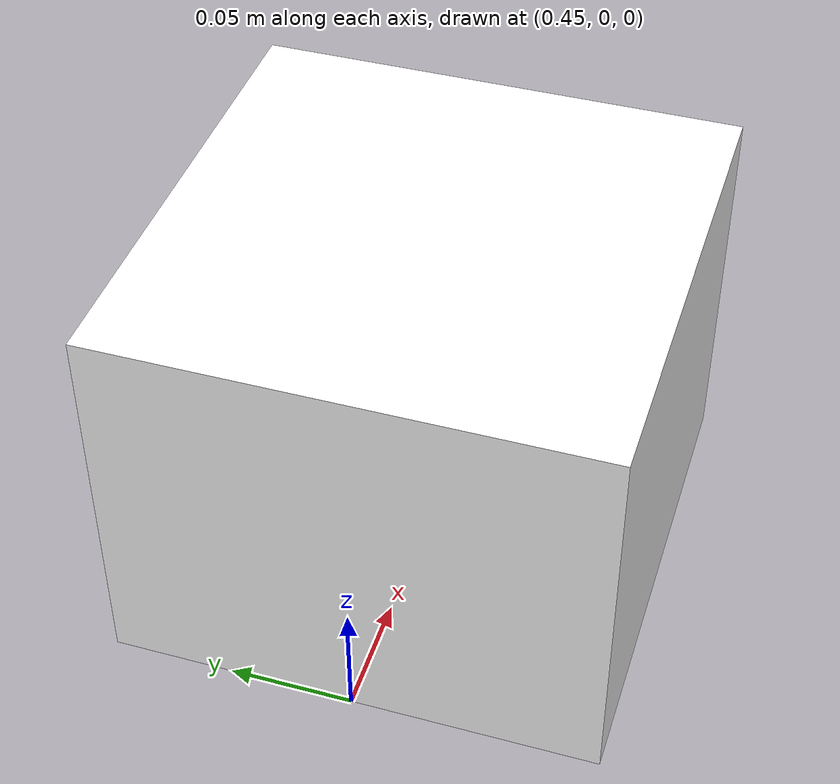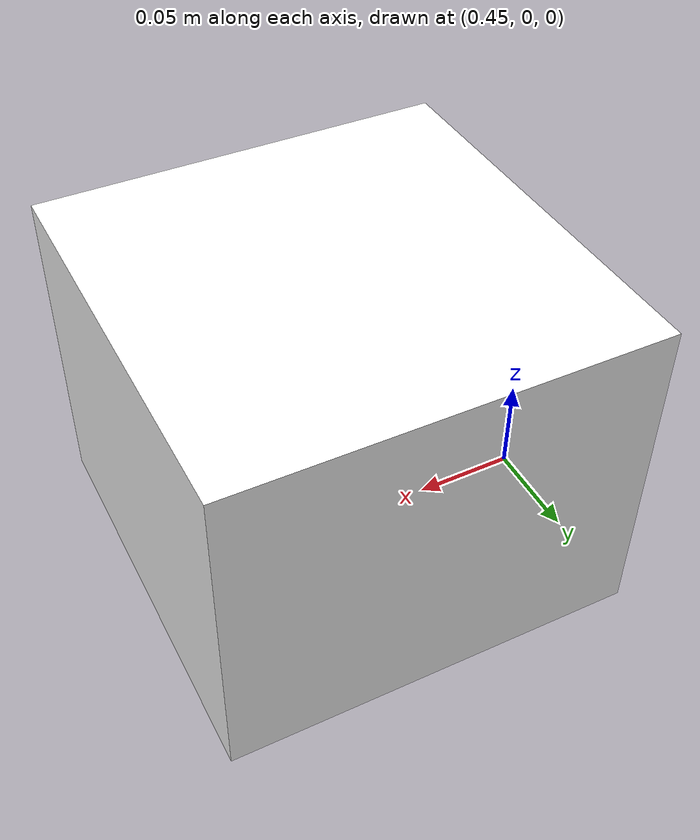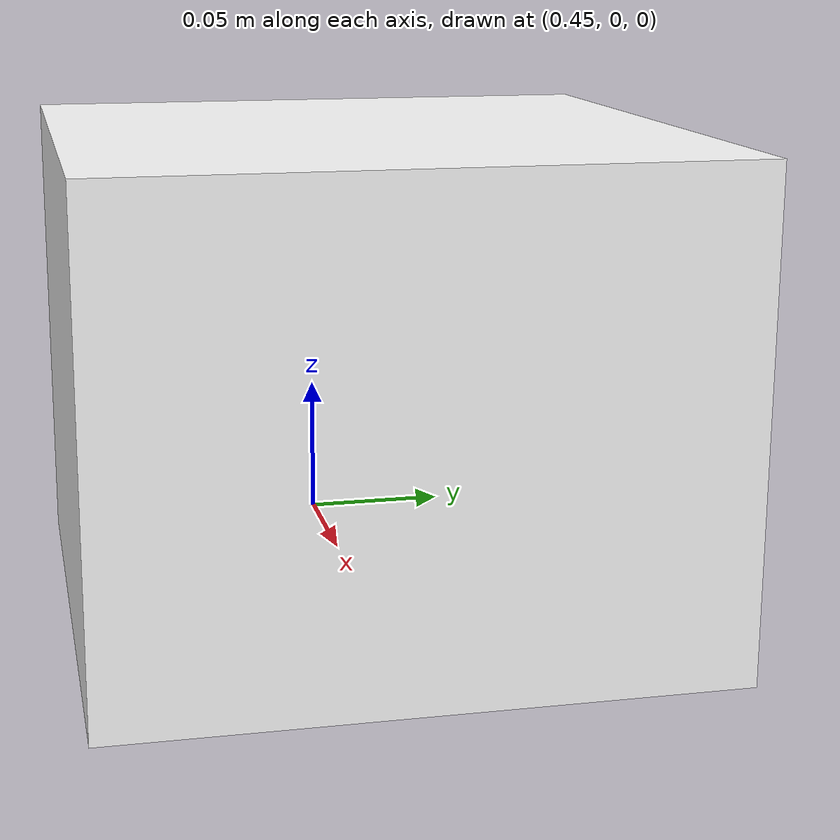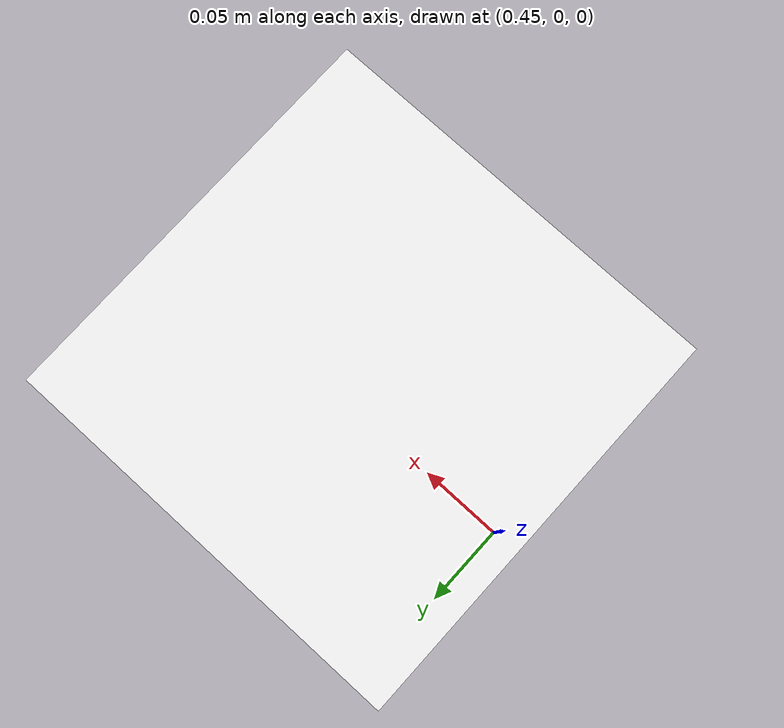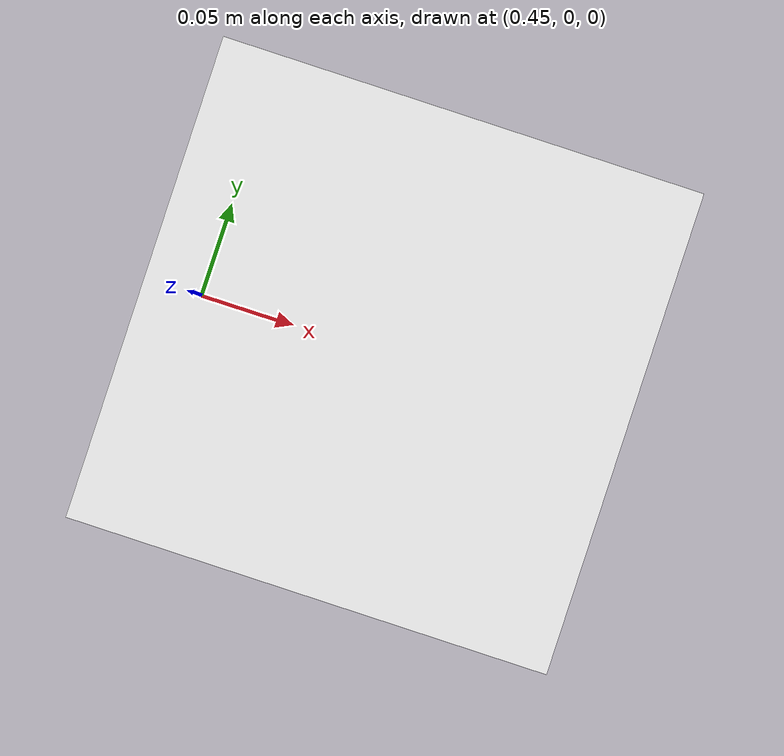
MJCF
<mujoco>

<option solver="CG"/>
<extension>
   <plugin plugin="mujoco.elasticity.solid"/>
</extension>

<worldbody>

<body name= "rigidbody" pos="0.55 0 0.08">
   <geom type="box" size="0.1 0.1 0.08" rgba="1.0 1.0 1.0 1" mass="1" condim="4"/>
</body>
</worldbody>

</mujoco>
